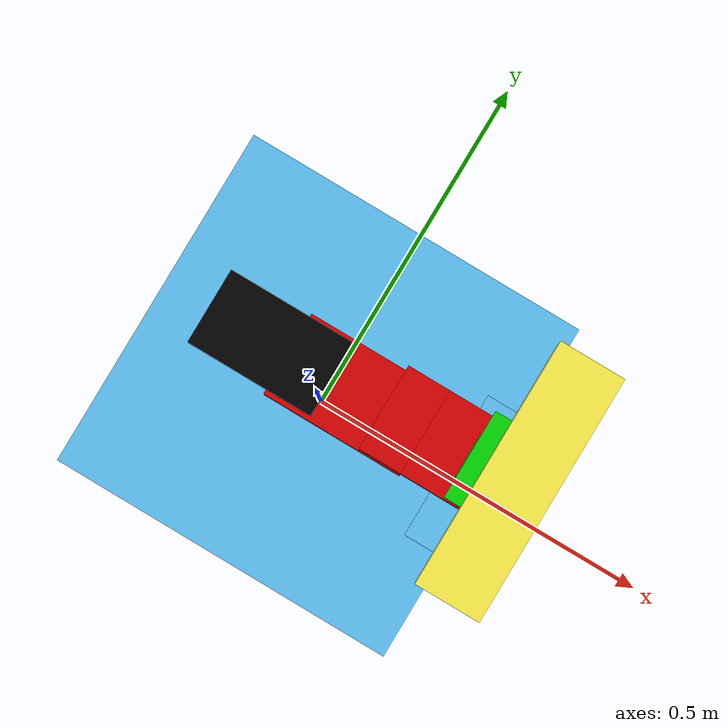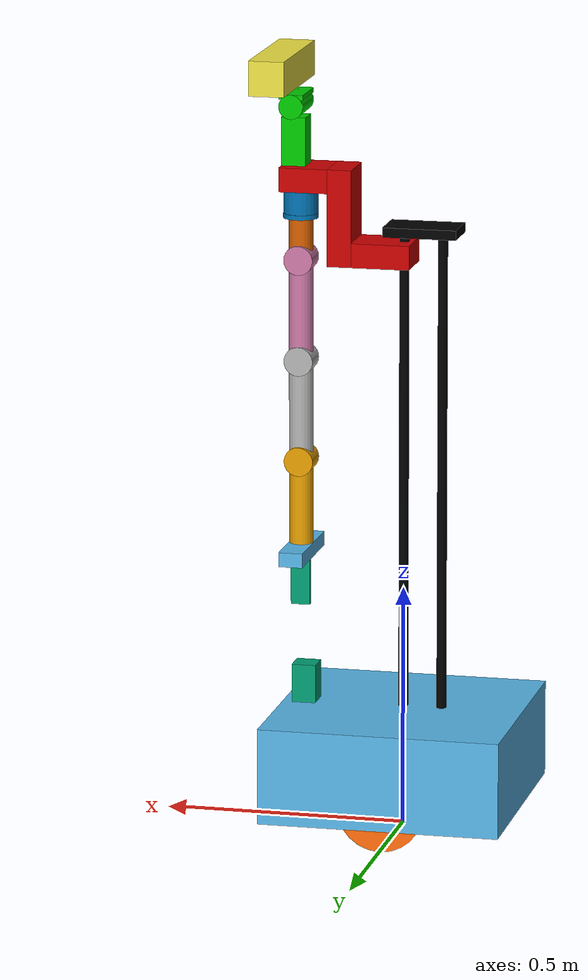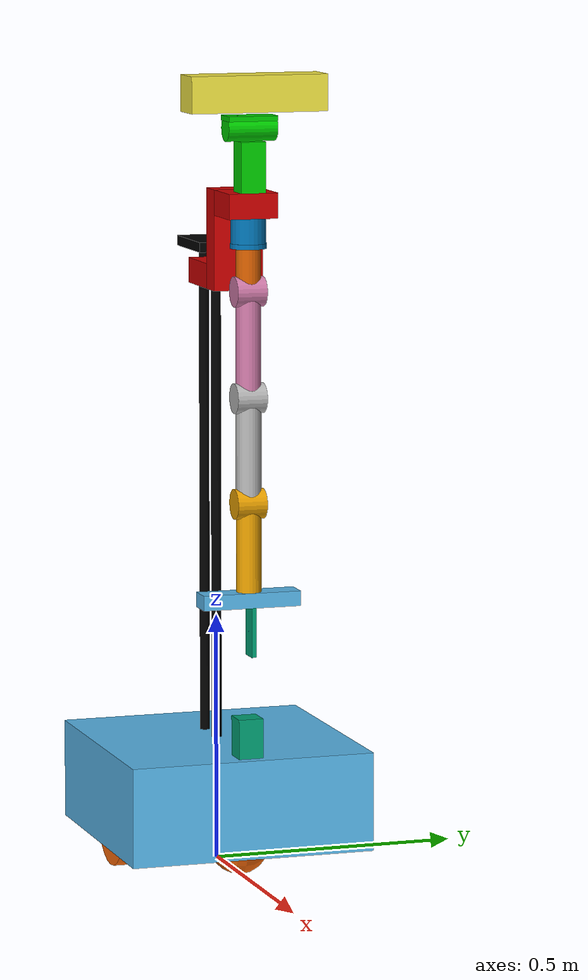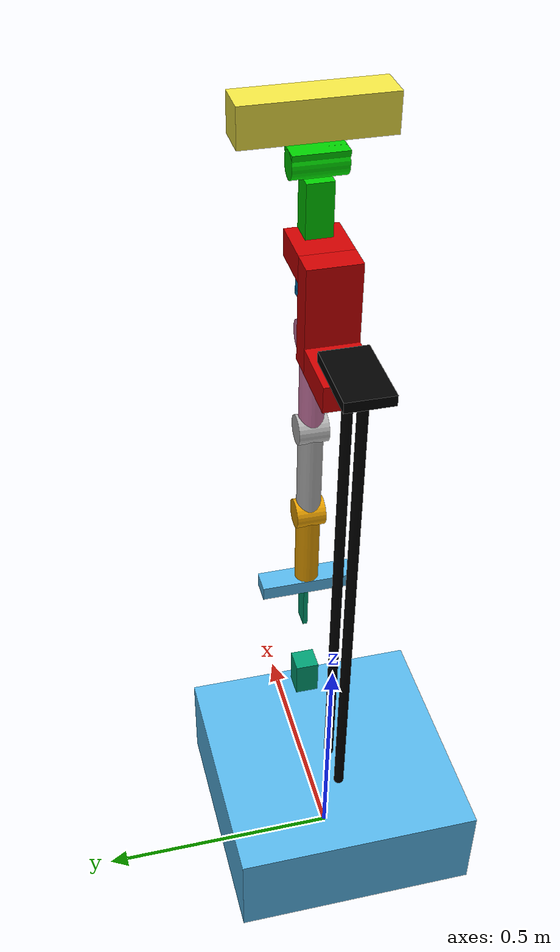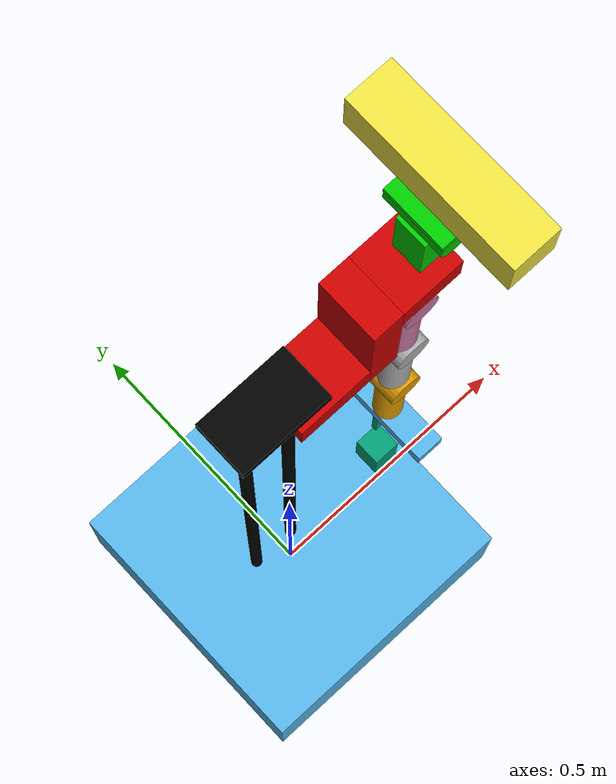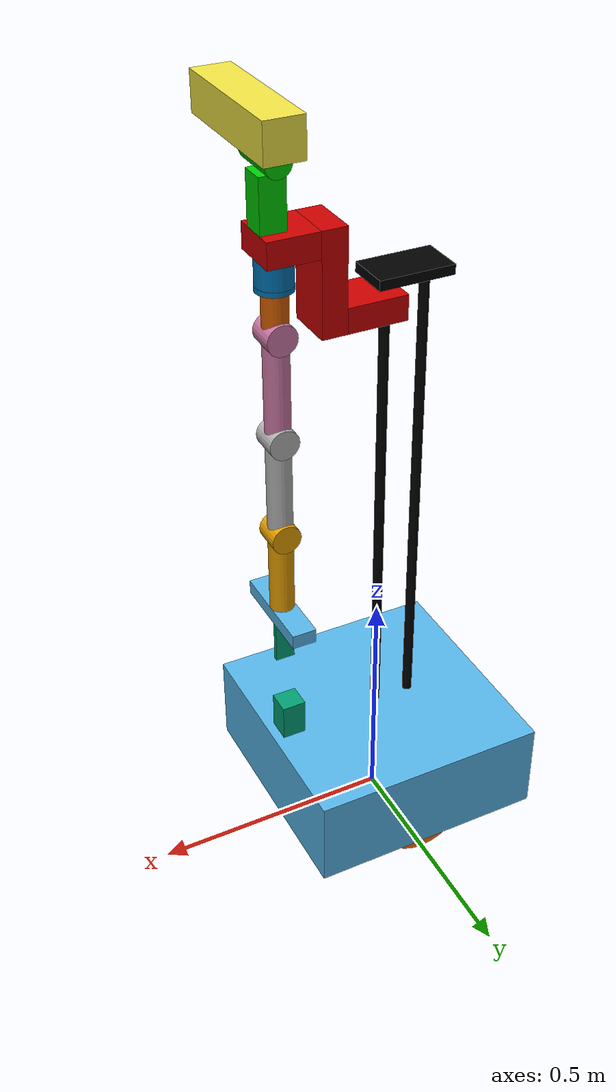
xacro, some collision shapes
<?xml version="1.0" encoding="utf-8" ?>
<!-- |    This document was autogenerated by xacro from /home/gw/catkin_ws/src/kejia/kejia_simulator/kejia_description/urdf/kejia.xacro | -->
<!-- |    EDITING THIS FILE BY HAND IS NOT RECOMMENDED                                 | -->
<robot name="kejia">
    <material name="black">
        <color rgba="0.0 0.0 0.0 1.0" />
    </material>
    <material name="blue">
        <color rgba="0.0 0.0 0.8 1.0" />
    </material>
    <material name="green">
        <color rgba="0.0 0.8 0.0 1.0" />
    </material>
    <material name="grey">
        <color rgba="0.2 0.2 0.2 1.0" />
    </material>
    <material name="orange">
        <color rgba="1.0 0.423529411765 0.0392156862745 1.0" />
    </material>
    <material name="brown">
        <color rgba="0.870588235294 0.811764705882 0.764705882353 1.0" />
    </material>
    <material name="red">
        <color rgba="0.8 0.0 0.0 1.0" />
    </material>
    <material name="white">
        <color rgba="1.0 1.0 1.0 1.0" />
    </material>
    <!-- see https://secure.wikimedia.org/wikipedia/en/wiki/List_of_moment_of_inertia_tensors -->
    <!-- base_link -->
    <link name="base_link" />
    <!-- Chassis -->
    <joint name="base_link_chassis_joint" type="fixed">
        <origin rpy="0 0 0" xyz="0 0 0.15" />
        <parent link="base_link" />
        <child link="chassis" />
    </joint>
    <link name="chassis">
        <visual name="chassis_visual">
            <geometry name="chassis_geometry">
                <box size="0.5 0.5 0.2" />
            </geometry>
        </visual>
        <collision name="chassis_collision">
            <geometry>
                <box size="0.5 0.5 0.2" />
            </geometry>
        </collision>

        <inertial>
            <mass value="15.0" />
            <origin xyz="0 0 0" />
            <inertia ixx="0.362499855" ixy="0.0" ixz="0.0" iyy="0.362499855" iyz="0.0" izz="0.62499975" />
        </inertial>

    </link>
    <joint name="chassis_laser_joint" type="fixed">
        <origin rpy="0 0 0" xyz="0.23 0 0.16" />
        <parent link="chassis" />
        <child link="laser_link" />
    </joint>
    <link name="laser_link">
        <visual name="laser_link_visual">
            <origin rpy="0 0 0" xyz="-0.025 0 -0.02" />
            <geometry name="chassis_geometry">
                <mesh filename="package://kejia_description/sdf/hokuyo/meshes/hokuyo.dae" />
            </geometry>
        </visual>
        <collision name="laser_link_collision">
            <origin rpy="0 0 0" xyz="-0.025 0 -0.02" />
            <geometry>
                <box size="0.05 0.05 0.08" />
            </geometry>
        </collision>

        <inertial>
            <mass value="0.1" />
            <inertia ixx="0.03" iyy="0.03" izz="0.03" ixy="0.0" ixz="0.0" iyz="0.0" />
        </inertial>

    </link>
    <gazebo reference="chassis">
        <material value="Gazebo/White" />
    </gazebo>
    <gazebo reference="laser_link">
        <sensor name="head_hokuyo_sensor" type="ray">
            <pose>0 0 0 0 0 0</pose>
            <always_on>1</always_on>
            <update_rate>30</update_rate>
            <visualize>true</visualize>
            <ray>
                <scan>
                    <horizontal>
                        <!-- The URG-04LX-UG01  has  683 steps with 0.35139 Degree resolution -->
                        <resolution>1</resolution>
                        <max_angle>2.0944</max_angle>
                        <!-- 120 Degree -->
                        <min_angle>-2.0944</min_angle>
                        <!-- -120 Degree -->
                        <samples>683</samples>
                    </horizontal>
                </scan>
                <range>
                    <min>0.10</min>
                    <max>140.0</max>
                    <resolution>0.01</resolution>
                </range>
                <noise>
                    <type>gaussian</type>
                    <mean>0.0</mean>
                    <stddev>0.01</stddev>
                </noise>
            </ray>
            <plugin filename="libgazebo_ros_laser.so" name="gazebo_ros_base_hokuyo_controller">
                <topicName>/scan</topicName>
                <frameName>laser_link</frameName>
            </plugin>
        </sensor>
        <material value="Gazebo/Black" />
    </gazebo>
    <!-- Wheel -->
    <joint name="left_wheel_joint" type="continuous">
        <origin rpy="1.57079632679 0 0" xyz="0 0.20 0.09" />
        <parent link="base_link" />
        <child link="left_wheel" />
        <axis xyz="0 0 -1" />
        <limit effort="100" velocity="10.0" />
        <joint_properties damping="0.0" friction="0.0" />
    </joint>
    <link name="left_wheel">
        <visual name="left_wheel_visual">
            <origin rpy="0 0 0" xyz="0 0 0" />
            <geometry name="{name}_wheel_geometry">
                <cylinder length="0.05" radius="0.09" />
            </geometry>
            <material name="orange" />
        </visual>
        <collision>
            <origin rpy="0 0 0" xyz="0 0 0" />
            <geometry>
                <cylinder length="0.05" radius="0.09" />
            </geometry>
        </collision>

        <inertial>
            <mass value="15" />
            <origin xyz="0 0 0" />
            <inertia ixx="0.4" ixy="0" ixz="0" iyy="0.4" iyz="0" izz="0.2" />
        </inertial>

    </link>
    <gazebo reference="left_wheel">
        <mu1>100000</mu1>
        <mu2>100000</mu2>
        <kp>100000000.0</kp>
        <kd>1.0</kd>
        <fdir1 value="0 0 1" />
        <material>Gazebo/Grey</material>
        <turnGravityOff>false</turnGravityOff>
    </gazebo>
    <!-- Wheel -->
    <joint name="right_wheel_joint" type="continuous">
        <origin rpy="1.57079632679 0 0" xyz="0 -0.20 0.09" />
        <parent link="base_link" />
        <child link="right_wheel" />
        <axis xyz="0 0 -1" />
        <limit effort="100" velocity="10.0" />
        <joint_properties damping="0.0" friction="0.0" />
    </joint>
    <link name="right_wheel">
        <visual name="right_wheel_visual">
            <origin rpy="0 0 0" xyz="0 0 0" />
            <geometry name="{name}_wheel_geometry">
                <cylinder length="0.05" radius="0.09" />
            </geometry>
            <material name="orange" />
        </visual>
        <collision>
            <origin rpy="0 0 0" xyz="0 0 0" />
            <geometry>
                <cylinder length="0.05" radius="0.09" />
            </geometry>
        </collision>

        <inertial>
            <mass value="15" />
            <origin xyz="0 0 0" />
            <inertia ixx="0.4" ixy="0" ixz="0" iyy="0.4" iyz="0" izz="0.2" />
        </inertial>

    </link>
    <gazebo reference="right_wheel">
        <mu1>100000</mu1>
        <mu2>100000</mu2>
        <kp>100000000.0</kp>
        <kd>1.0</kd>
        <fdir1 value="0 0 1" />
        <material>Gazebo/Grey</material>
        <turnGravityOff>false</turnGravityOff>
    </gazebo>
    <!-- Wheel -->
    <joint name="back_wheel_joint" type="fixed">
        <origin rpy="1.57079632679 0 0" xyz="-0.15 0.0 0.06" />
        <parent link="base_link" />
        <child link="back_wheel" />
    </joint>
    <link name="back_wheel">
        <visual name="back_wheel_visual">
            <origin rpy="0 0 0" xyz="0 0 0" />
            <geometry name="{name}_wheel_geometry">
                <sphere radius="0.06" />
            </geometry>
            <material name="orange" />
        </visual>
        <collision>
            <origin rpy="0 0 0" xyz="0 0 0" />
            <geometry>
                <sphere radius="0.06" />
            </geometry>
        </collision>

        <inertial>
            <mass value="5" />
            <origin xyz="0 0 0" />
            <inertia ixx="0.4" ixy="0.0" ixz="0.0" iyy="0.4" iyz="0.0" izz="0.4" />
        </inertial>

    </link>
    <gazebo reference="back_wheel">
        <mu1 value="0" />
        <mu2 value="0" />
        <kp value="10000000.0" />
        <kd value="1.0" />
        <fdir1 value="1 0 0" />
        <material>Gazebo/Grey</material>
        <turnGravityOff>false</turnGravityOff>
    </gazebo>
    <!-- Wheel -->
    <joint name="front_wheel_joint" type="fixed">
        <origin rpy="1.57079632679 0 0" xyz="0.15 0.0 0.06" />
        <parent link="base_link" />
        <child link="front_wheel" />
    </joint>
    <link name="front_wheel">
        <visual name="front_wheel_visual">
            <origin rpy="0 0 0" xyz="0 0 0" />
            <geometry name="{name}_wheel_geometry">
                <sphere radius="0.06" />
            </geometry>
            <material name="orange" />
        </visual>
        <collision>
            <origin rpy="0 0 0" xyz="0 0 0" />
            <geometry>
                <sphere radius="0.06" />
            </geometry>
        </collision>

        <inertial>
            <mass value="5" />
            <origin xyz="0 0 0" />
            <inertia ixx="0.4" ixy="0.0" ixz="0.0" iyy="0.4" iyz="0.0" izz="0.4" />
        </inertial>

    </link>
    <gazebo reference="front_wheel">
        <mu1 value="0" />
        <mu2 value="0" />
        <kp value="10000000.0" />
        <kd value="1.0" />
        <fdir1 value="1 0 0" />
        <material>Gazebo/Grey</material>
        <turnGravityOff>false</turnGravityOff>
    </gazebo>
    <!-- Ev -->
    <joint name="chassis_ev_joint" type="fixed">
        <origin rpy="0 0 0" xyz="0 0 0.10" />
        <parent link="chassis" />
        <child link="ev" />
    </joint>
    <link name="ev">

        <inertial>
            <mass value="0.1" />
            <origin rpy="0 0 0" xyz="0 0 0" />
            <inertia ixx="0" ixy="0" ixz="0" iyy="0" iyz="0" izz="0" />
        </inertial>

        <visual name="ev_visual">
            <origin rpy="0 0 0" xyz="0     0       0.5" />
            <geometry>
                <cylinder length="1.0" radius=".01" />
            </geometry>
            <material name="black" />
        </visual>
        <collision name="ev_collision">
            <origin rpy="0 0 0" xyz="0     0       0.5" />
            <geometry>
                <cylinder length="1.0" radius=".01" />
            </geometry>
        </collision>
        <visual name="ev_visual2">
            <origin rpy="0 0 0" xyz="-0.08     0       0.5" />
            <geometry>
                <cylinder length="1.0" radius=".01" />
            </geometry>
            <material name="black" />
        </visual>
        <collision name="ev_collision2">
            <origin rpy="0 0 0" xyz="-0.08     0       0.5" />
            <geometry>
                <cylinder length="1.0" radius=".01" />
            </geometry>
        </collision>
        <visual name="ev_visual3">
            <origin rpy="0 0 0" xyz="-0.04   0      1.0" />
            <geometry>
                <box size=".152 .09 .02" />
            </geometry>
            <material name="black" />
        </visual>
        <collision name="ev_collision3">
            <origin rpy="0 0 0" xyz="-0.04   0      1.0" />
            <geometry>
                <box size=".152 .09 .02" />
            </geometry>
        </collision>
    </link>
    <gazebo reference="ev">
        <material value="Gazebo/Black" />
    </gazebo>
    <!-- kejia_support -->
    <joint name="ev_support_joint" type="prismatic">
        <parent link="ev" />
        <child link="support" />
        <origin rpy="0 0 0" xyz="0 0 0.95" />
        <axis xyz="0 0 1" />
        <limit effort="100.0" lower="-0.7" upper="0.0" velocity="0.3" />
    </joint>
    <link name="support">

        <inertial>
            <mass value="0.1" />
            <origin rpy="0 0 0" xyz="0 0 0" />
            <inertia ixx="0" ixy="0" ixz="0" iyy="0" iyz="0" izz="0" />
        </inertial>

        <collision name="support_collision1">
            <origin rpy="0 0 0" xyz="0.04 0 0" />
            <geometry>
                <box size="0.12 0.1 0.05" />
            </geometry>
        </collision>
        <visual name="support_visual1">
            <origin rpy="0 0 0" xyz="0.04 0 0" />
            <geometry>
                <box size="0.12 0.1 0.05" />
            </geometry>
            <material name="red" />
        </visual>
        <collision name="support_collision2">
            <origin rpy="0 0 0" xyz="0.125 0 0.075" />
            <geometry>
                <box size="0.05 0.1 0.20" />
            </geometry>
        </collision>
        <visual name="support_visual2">
            <origin rpy="0 0 0" xyz="0.125 0 0.075" />
            <geometry>
                <box size="0.05 0.1 0.20" />
            </geometry>
            <material name="red" />
        </visual>
        <collision name="support_collision3">
            <origin rpy="0 0 0" xyz="0.20 0 0.15" />
            <geometry>
                <box size="0.1 0.1 0.05" />
            </geometry>
        </collision>
        <visual name="support_visual3">
            <origin rpy="0 0 0" xyz="0.20 0 0.15" />
            <geometry>
                <box size="0.1 0.1 0.05" />
            </geometry>
            <material name="red" />
        </visual>
    </link>
    <joint name="neck_pan_joint" type="revolute">
        <parent link="support" />
        <child link="head_pan" />
        <origin rpy="0 0 0" xyz="0.225 0 0.175" />
        <axis xyz="0 0 1" />
        <limit effort="10.0" lower="-1.7" upper="1.7" velocity="3.0" />
    </joint>
    <link name="head_pan">

        <inertial>
            <mass value="0.1" />
            <origin rpy="0 0 0" xyz="0 0 0" />
            <inertia ixx="0" ixy="0" ixz="0" iyy="0" iyz="0" izz="0" />
        </inertial>

        <collision name="head_pan_collision">
            <origin rpy="0 0 0" xyz="0 0 0.05" />
            <geometry>
                <box size="0.05 0.05 0.10" />
            </geometry>
        </collision>
        <visual name="head_pan_visual">
            <origin rpy="0 0 0" xyz="0 0 0.05" />
            <geometry>
                <box size="0.05 0.05 0.10" />
            </geometry>
            <material name="green" />
        </visual>
    </link>
    <joint name="neck_tilt_joint" type="revolute">
        <parent link="head_pan" />
        <child link="head_tilt" />
        <origin rpy="0 0 0" xyz="0 0 0.10" />
        <axis xyz="0 -1 0" />
        <limit effort="10.0" lower="-1.7" upper="1.7" velocity="3.0" />
    </joint>
    <link name="head_tilt">

        <inertial>
            <mass value="0.1" />
            <origin rpy="0 0 0" xyz="0 0 0" />
            <inertia ixx="0" ixy="0" ixz="0" iyy="0" iyz="0" izz="0" />
        </inertial>

        <collision name="head_tilt_collision">
            <origin rpy="1.57 0 0" xyz="0 0 0.025" />
            <geometry>
                <cylinder length="0.1" radius=".025" />
            </geometry>
        </collision>
        <visual name="head_tilt_visual">
            <origin rpy="1.57 0 0" xyz="0 0 0.025" />
            <geometry>
                <cylinder length="0.1" radius=".025" />
            </geometry>
            <material name="green" />
        </visual>
        <collision name="head_tilt_collision1">
            <origin rpy="0 0 0" xyz="0 0 0.045" />
            <geometry>
                <box size="0.05 0.10 0.01" />
            </geometry>
        </collision>
        <visual name="head_tilt_visual1">
            <origin rpy="0 0 0" xyz="0 0 0.045" />
            <geometry>
                <box size="0.05 0.10 0.01" />
            </geometry>
            <material name="green" />
        </visual>
    </link>
    <gazebo reference="support">
        <material value="Gazebo/Red" />
    </gazebo>
    <gazebo reference="head_pan">
        <material value="Gazebo/Green" />
    </gazebo>
    <gazebo reference="head_tilt">
        <material value="Gazebo/Blue" />
    </gazebo>
    <!-- Kinect -->
    <joint name="head_tilt_head_kinect_joint" type="fixed">
        <origin rpy="0 0 0" xyz="0 0 0.086" />
        <parent link="head_tilt" />
        <child link="head_kinect" />
    </joint>
    <link name="head_kinect">
        <collision name="head_kinect_collision">
            <origin rpy="0 0 0" xyz="0.03 0 0.01" />
            <geometry>
                <box size="0.073000 0.276000 0.072000" />
            </geometry>
        </collision>
        <visual name="head_kinect_visual">
            <origin rpy="0 0 0" xyz="0.03 0 0.01" />
            <geometry>
                <mesh filename="package://kejia_description/sdf/kinect/meshes/kinect.dae" />
            </geometry>
        </visual>

        <inertial>
            <mass value="0.1" />
            <inertia ixx="0.03" iyy="0.03" izz="0.03" ixy="0.0" ixz="0.0" iyz="0.0" />
        </inertial>

    </link>
    <gazebo reference="head_kinect">
        <sensor name="head_kinect_frame_sensor" type="depth">
            <always_on>true</always_on>
            <update_rate>20.0</update_rate>
            <camera>
                <horizontal_fov>0.994837673637</horizontal_fov>
                <image>
                    <format>R8G8B8</format>
                    <width>640</width>
                    <height>480</height>
                </image>
                <clip>
                    <near>0.01</near>
                    <far>5</far>
                </clip>
            </camera>
            <plugin filename="libgazebo_ros_openni_kinect.so" name="head_kinect_frame_controller">
                <alwaysOn>true</alwaysOn>
                <updateRate>20.0</updateRate>
                <cameraName>head_kinect</cameraName>
                <imageTopicName>head_kinect/rgb/image_raw</imageTopicName>
                <cameraInfoTopicName>head_kinect/rgb/camera_info</cameraInfoTopicName>
                <depthImageTopicName>head_kinect/depth/image_raw</depthImageTopicName>
                <depthImageCameraInfoTopicName>head_kinect/depth/camera_info</depthImageCameraInfoTopicName>
                <pointCloudTopicName>head_kinect/rgb/points</pointCloudTopicName>
                <frameName>head_kinect_optical_frame</frameName>
                <pointCloudCutoff>0.5</pointCloudCutoff>
                <distortionK1>0.00000001</distortionK1>
                <distortionK2>0.00000001</distortionK2>
                <distortionK3>0.00000001</distortionK3>
                <distortionT1>0.00000001</distortionT1>
                <distortionT2>0.00000001</distortionT2>
                <CxPrime>0</CxPrime>
                <Cx>0</Cx>
                <Cy>0</Cy>
                <focalLength>0</focalLength>
                <hackBaseline>0</hackBaseline>
            </plugin>
        </sensor>
    </gazebo>
    <!-- kejia_arm -->
    <joint name="support_arm_joint" type="fixed">
        <parent link="support" />
        <child link="arm_base" />
        <origin rpy="0 0 0" xyz="0.215 0 0.125" />
    </joint>
    <link name="arm_base">

        <inertial>
            <mass value="0.01" />
            <origin rpy="0 0 0" xyz="0 0 0" />
            <inertia ixx="0" ixy="0" ixz="0" iyy="0" iyz="0" izz="0" />
        </inertial>

        <collision name="arm_collision">
            <origin rpy="0 0 0" xyz="0 0 -0.025" />
            <geometry>
                <cylinder length="0.05" radius="0.035" />
            </geometry>
        </collision>
        <visual name="arm_visual">
            <origin rpy="0 0 0" xyz="0 0 -0.025" />
            <geometry>
                <cylinder length="0.05" radius="0.035" />
            </geometry>
        </visual>
        <visual>
            <origin rpy="0 0 0" xyz="0 0 -0.055" />
            <geometry>
                <cylinder length="0.01" radius="0.036" />
            </geometry>
        </visual>
    </link>
    <joint name="arm_base_arm_lr_joint" type="revolute">
        <parent link="arm_base" />
        <child link="arm_lr" />
        <origin rpy="0 0 0" xyz="0 0 -0.05" />
        <axis xyz="0 0 1" />
        <limit effort="10.0" lower="-2.8" upper="2.8" velocity="2.0" />
    </joint>
    <link name="arm_lr">

        <inertial>
            <mass value="0.01" />
            <origin rpy="0 0 0" xyz="0 0 0" />
            <inertia ixx="0" ixy="0" ixz="0" iyy="0" iyz="0" izz="0" />
        </inertial>

        <collision>
            <origin rpy="0 0 0" xyz="0 0 -0.04" />
            <geometry>
                <cylinder length="0.08" radius="0.025" />
            </geometry>
        </collision>
        <visual>
            <origin rpy="0 0 0" xyz="0 0 -0.04" />
            <geometry>
                <cylinder length="0.08" radius="0.025" />
            </geometry>
        </visual>
    </link>
    <joint name="arm_lr_arm_ud1_joint" type="revolute">
        <parent link="arm_lr" />
        <child link="arm_ud1" />
        <origin rpy="0 0 0" xyz="0 0 -0.095" />
        <axis xyz="0 -1 0" />
        <limit effort="10.0" lower="-2.8" upper="2.8" velocity="2.0" />
    </joint>
    <link name="arm_ud1">

        <inertial>
            <mass value="0.01" />
            <origin rpy="0 0 0" xyz="0 0 0" />
            <inertia ixx="0" ixy="0" ixz="0" iyy="0" iyz="0" izz="0" />
        </inertial>

        <collision>
            <origin rpy="1.57079 0 0" xyz="0 0 0" />
            <geometry>
                <cylinder length="0.06" radius="0.03" />
            </geometry>
        </collision>
        <visual>
            <origin rpy="1.57079 0 0" xyz="0 0 0" />
            <geometry>
                <cylinder length="0.06" radius="0.03" />
            </geometry>
        </visual>
        <collision name="arm_collision">
            <origin rpy="0 0 0" xyz="0 0 -0.105" />
            <geometry>
                <cylinder length="0.18" radius="0.025" />
            </geometry>
        </collision>
        <visual name="arm_visual">
            <origin rpy="0 0 0" xyz="0 0 -0.105" />
            <geometry>
                <cylinder length="0.18" radius="0.025" />
            </geometry>
        </visual>
    </link>
    <joint name="arm_ud1_arm_ud2_joint" type="revolute">
        <parent link="arm_ud1" />
        <child link="arm_ud2" />
        <origin rpy="0 0 0" xyz="0 0 -0.21" />
        <axis xyz="0 -1 0" />
        <limit effort="10.0" lower="-2.8" upper="2.8" velocity="2.0" />
    </joint>
    <link name="arm_ud2">

        <inertial>
            <mass value="0.01" />
            <origin rpy="0 0 0" xyz="0 0 0" />
            <inertia ixx="0" ixy="0" ixz="0" iyy="0" iyz="0" izz="0" />
        </inertial>

        <collision>
            <origin rpy="1.57079 0 0" xyz="0 0 0" />
            <geometry>
                <cylinder length="0.06" radius="0.03" />
            </geometry>
        </collision>
        <visual>
            <origin rpy="1.57079 0 0" xyz="0 0 0" />
            <geometry>
                <cylinder length="0.06" radius="0.03" />
            </geometry>
        </visual>
        <collision name="arm_collision">
            <origin rpy="0 0 0" xyz="0 0 -0.105" />
            <geometry>
                <cylinder length="0.18" radius="0.025" />
            </geometry>
        </collision>
        <visual name="arm_visual">
            <origin rpy="0 0 0" xyz="0 0 -0.105" />
            <geometry>
                <cylinder length="0.18" radius="0.025" />
            </geometry>
        </visual>
    </link>
    <joint name="arm_ud2_arm_ud3_joint" type="revolute">
        <parent link="arm_ud2" />
        <child link="arm_ud3" />
        <origin rpy="0 0 0" xyz="0 0 -0.21" />
        <axis xyz="0 -1 0" />
        <limit effort="10.0" lower="-2.8" upper="2.8" velocity="2.0" />
    </joint>
    <link name="arm_ud3">

        <inertial>
            <mass value="0.01" />
            <origin rpy="0 0 0" xyz="0 0 0" />
            <inertia ixx="0" ixy="0" ixz="0" iyy="0" iyz="0" izz="0" />
        </inertial>

        <collision>
            <origin rpy="1.57079 0 0" xyz="0 0 0" />
            <geometry>
                <cylinder length="0.06" radius="0.03" />
            </geometry>
        </collision>
        <visual>
            <origin rpy="1.57079 0 0" xyz="0 0 0" />
            <geometry>
                <cylinder length="0.06" radius="0.03" />
            </geometry>
        </visual>
        <collision name="arm_collision">
            <origin rpy="0 0 0" xyz="0 0 -0.095" />
            <geometry>
                <cylinder length="0.16" radius="0.025" />
            </geometry>
        </collision>
        <visual name="arm_visual">
            <origin rpy="0 0 0" xyz="0 0 -0.095" />
            <geometry>
                <cylinder length="0.16" radius="0.025" />
            </geometry>
        </visual>
    </link>
    <joint name="arm_ud3_arm_wrist_joint" type="revolute">
        <parent link="arm_ud3" />
        <child link="arm_wrist" />
        <origin rpy="0 0 0" xyz="0 0 -0.19" />
        <axis xyz="0 0 1" />
        <limit effort="10.0" lower="-3.14" upper="3.14" velocity="1.0" />
    </joint>
    <link name="arm_wrist">

        <inertial>
            <mass value="0.01" />
            <origin rpy="0 0 0" xyz="0 0 0" />
            <inertia ixx="0" ixy="0" ixz="0" iyy="0" iyz="0" izz="0" />
        </inertial>

        <collision>
            <origin rpy="0 0 0" xyz="0 0 0" />
            <geometry>
                <box size="0.05 0.2 0.03" />
            </geometry>
        </collision>
        <visual>
            <origin rpy="0 0 0" xyz="0 0 0" />
            <geometry>
                <box size="0.05 0.2 0.03" />
            </geometry>
        </visual>
    </link>
    <joint name="arm_wrist_gripper_left_joint" type="prismatic">
        <parent link="arm_wrist" />
        <child link="gripper_left" />
        <origin rpy="0 0 0" xyz="0 0.005 -0.065" />
        <axis xyz="0 1 0" />
        <limit effort="10.0" lower="0" upper="0.085" velocity="1.0" />
    </joint>
    <link name="gripper_left">

        <inertial>
            <mass value="0.01" />
            <origin rpy="0 0 0" xyz="0 0 0" />
            <inertia ixx="0" ixy="0" ixz="0" iyy="0" iyz="0" izz="0" />
        </inertial>

        <collision>
            <origin rpy="0 0 0" xyz="0 0 0" />
            <geometry>
                <box size="0.04 0.01 0.1" />
            </geometry>
        </collision>
        <visual>
            <origin rpy="0 0 0" xyz="0 0 0" />
            <geometry>
                <box size="0.04 0.01 0.1" />
            </geometry>
        </visual>
    </link>
    <joint name="arm_wrist_gripper_right_joint" type="prismatic">
        <parent link="arm_wrist" />
        <child link="gripper_right" />
        <origin rpy="0 0 0" xyz="0 0.005 -0.065" />
        <axis xyz="0 -1 0" />
        <limit effort="10.0" lower="0" upper="0.085" velocity="0.1" />
    </joint>
    <link name="gripper_right">

        <inertial>
            <mass value="0.01" />
            <origin rpy="0 0 0" xyz="0 0 0" />
            <inertia ixx="0" ixy="0" ixz="0" iyy="0" iyz="0" izz="0" />
        </inertial>

        <collision>
            <origin rpy="0 0 0" xyz="0 0 0" />
            <geometry>
                <box size="0.04 0.01 0.1" />
            </geometry>
        </collision>
        <visual>
            <origin rpy="0 0 0" xyz="0 0 0" />
            <geometry>
                <box size="0.04 0.01 0.1" />
            </geometry>
        </visual>
    </link>
    <joint name="arm_wrist_end_effector_joint" type="fixed">
        <parent link="arm_wrist" />
        <child link="end_effector" />
        <origin rpy="0 0 0" xyz="0 0 -0.065" />
    </joint>
    <link name="end_effector">

        <inertial>
            <mass value="0.01" />
            <origin rpy="0 0 0" xyz="0 0 0" />
            <inertia ixx="0" ixy="0" ixz="0" iyy="0" iyz="0" izz="0" />
        </inertial>

        <visual>
            <origin rpy="0 0 0" xyz="0 0 0" />
            <geometry>
                <box size="0.001 0.001 0.001" />
            </geometry>
        </visual>
    </link>
    <gazebo>
        <gripper name="kejia_gripper">
            <grasp_check>
                <attach_steps>2</attach_steps>
                <detach_steps>4</detach_steps>
                <min_contact_count>1</min_contact_count>
            </grasp_check>
            <gripper_link>gripper_left</gripper_link>
            <gripper_link>gripper_right</gripper_link>
            <palm_link>arm_wrist</palm_link>
        </gripper>
    </gazebo>
    <gazebo reference="arm_base">
        <material value="Gazebo/Green" />
    </gazebo>
    <gazebo reference="arm_ud1">
        <material value="Gazebo/Blue" />
    </gazebo>
    <gazebo reference="arm_ud2">
        <material value="Gazebo/Blue" />
    </gazebo>
    <gazebo reference="arm_ud3">
        <material value="Gazebo/Blue" />
    </gazebo>
    <gazebo reference="arm_wrist">
        <material value="Gazebo/Green" />
        <mu1>100000</mu1>
        <mu2>100000</mu2>
        <kp>100000000.0</kp>
        <kd>1.0</kd>
    </gazebo>
    <gazebo reference="gripper_right">
        <material value="Gazebo/Black" />
        <mu1>100000</mu1>
        <mu2>100000</mu2>
        <kp>100000000.0</kp>
        <kd>1.0</kd>
    </gazebo>
    <gazebo reference="gripper_left">
        <material value="Gazebo/Black" />
        <mu1>100000</mu1>
        <mu2>100000</mu2>
        <kp>100000000.0</kp>
        <kd>1.0</kd>
    </gazebo>

    <transmission name="trans_ev_support">
        <type>transmission_interface/SimpleTransmission</type>
        <actuator name="ev_support_motor">
            <hardwareInterface>hardware_interface/PositionJointInterface</hardwareInterface>
        </actuator>
        <joint name="ev_support_joint">
            <hardwareInterface>hardware_interface/PositionJointInterface</hardwareInterface>
        </joint>
    </transmission>
    <transmission name="trans_arm_base_arm_lr">
        <type>transmission_interface/SimpleTransmission</type>
        <actuator name="arm_base_arm_lr_motor">
            <hardwareInterface>hardware_interface/PositionJointInterface</hardwareInterface>
        </actuator>
        <joint name="arm_base_arm_lr_joint">
            <hardwareInterface>hardware_interface/PositionJointInterface</hardwareInterface>
        </joint>
    </transmission>
    <transmission name="trans_arm_lr_arm_ud1">
        <type>transmission_interface/SimpleTransmission</type>
        <actuator name="arm_lr_arm_ud1_motor">
            <hardwareInterface>hardware_interface/PositionJointInterface</hardwareInterface>
        </actuator>
        <joint name="arm_lr_arm_ud1_joint">
            <hardwareInterface>hardware_interface/PositionJointInterface</hardwareInterface>
        </joint>
    </transmission>
    <transmission name="trans_arm_ud1_arm_ud2">
        <type>transmission_interface/SimpleTransmission</type>
        <actuator name="arm_ud1_arm_ud2_motor">
            <hardwareInterface>hardware_interface/PositionJointInterface</hardwareInterface>
        </actuator>
        <joint name="arm_ud1_arm_ud2_joint">
            <hardwareInterface>hardware_interface/PositionJointInterface</hardwareInterface>
        </joint>
    </transmission>
    <transmission name="trans_arm_ud2_arm_ud3">
        <type>transmission_interface/SimpleTransmission</type>
        <actuator name="arm_ud2_arm_ud3_motor">
            <hardwareInterface>hardware_interface/PositionJointInterface</hardwareInterface>
        </actuator>
        <joint name="arm_ud2_arm_ud3_joint">
            <hardwareInterface>hardware_interface/PositionJointInterface</hardwareInterface>
        </joint>
    </transmission>
    <transmission name="trans_arm_ud3_arm_wrist">
        <type>transmission_interface/SimpleTransmission</type>
        <actuator name="arm_ud3_arm_wrist_motor">
            <hardwareInterface>hardware_interface/PositionJointInterface</hardwareInterface>
        </actuator>
        <joint name="arm_ud3_arm_wrist_joint">
            <hardwareInterface>hardware_interface/PositionJointInterface</hardwareInterface>
        </joint>
    </transmission>
    <transmission name="trans_arm_wrist_gripper_left">
        <type>transmission_interface/SimpleTransmission</type>
        <joint name="arm_wrist_gripper_left_joint">
            <hardwareInterface>hardware_interface/EffortJointInterface</hardwareInterface>
        </joint>
        <actuator name="arm_wrist_gripper_left_motor">
            <hardwareInterface>hardware_interface/EffortJointInterface</hardwareInterface>
            <mechanicalReduction>1</mechanicalReduction>
        </actuator>
    </transmission>
    <transmission name="trans_arm_wrist_gripper_right">
        <type>transmission_interface/SimpleTransmission</type>
        <joint name="arm_wrist_gripper_right_joint">
            <hardwareInterface>hardware_interface/EffortJointInterface</hardwareInterface>
        </joint>
        <actuator name="arm_wrist_gripper_right_motor">
            <hardwareInterface>hardware_interface/EffortJointInterface</hardwareInterface>
            <mechanicalReduction>1</mechanicalReduction>
        </actuator>
    </transmission>
    <transmission name="trans_neck_pan">
        <type>transmission_interface/SimpleTransmission</type>
        <actuator name="neck_pan_motor">
            <hardwareInterface>hardware_interface/PositionJointInterface</hardwareInterface>
        </actuator>
        <joint name="neck_pan_joint">
            <hardwareInterface>hardware_interface/PositionJointInterface</hardwareInterface>
        </joint>
    </transmission>
    <transmission name="trans_neck_tilt">
        <type>transmission_interface/SimpleTransmission</type>
        <actuator name="neck_tilt_motor">
            <hardwareInterface>hardware_interface/PositionJointInterface</hardwareInterface>
        </actuator>
        <joint name="neck_tilt_joint">
            <hardwareInterface>hardware_interface/PositionJointInterface</hardwareInterface>
        </joint>
    </transmission>
    <gazebo>
        <plugin filename="libgazebo_ros_control.so" name="gazebo_ros_control">
            <robotNamespace>/</robotNamespace>
            <robotSimType>gazebo_ros_control/DefaultRobotHWSim</robotSimType>
            <legacyModeNS>true</legacyModeNS>
        </plugin>
    </gazebo>
    <!-- Differential drive controller  -->
    <gazebo>
        <plugin filename="libgazebo_ros_diff_drive.so" name="differential_drive_controller_front">
            <leftJoint>left_wheel_joint</leftJoint>
            <rightJoint>right_wheel_joint</rightJoint>
            <wheelSeparation>0.4</wheelSeparation>
            <wheelDiameter>0.18</wheelDiameter>
            <wheelTorque>50</wheelTorque>
            <alwaysOn>true</alwaysOn>
            <updateRate>41</updateRate>
            <commandTopic>/cmd_vel</commandTopic>
            <odometryTopic>/odom</odometryTopic>
            <odometryFrame>/odom</odometryFrame>
            <odometryRate>30.0</odometryRate>
            <robotBaseFrame>/base_link</robotBaseFrame>
            <legacyMode>false</legacyMode>
        </plugin>
    </gazebo>
</robot>
